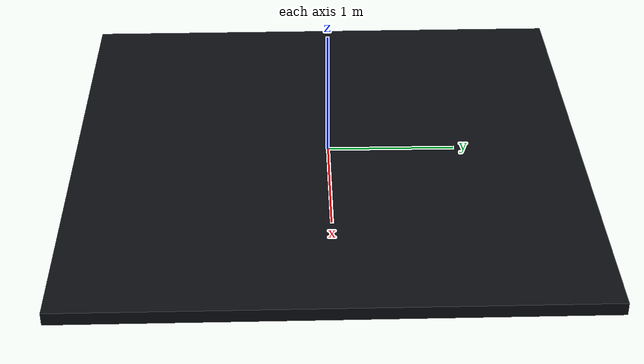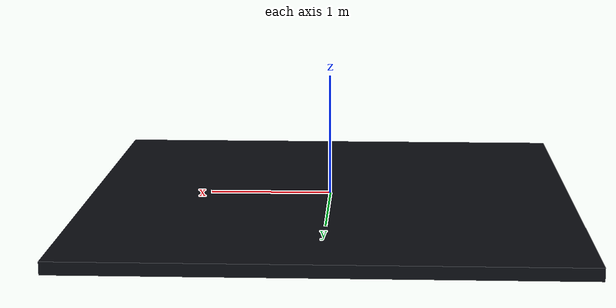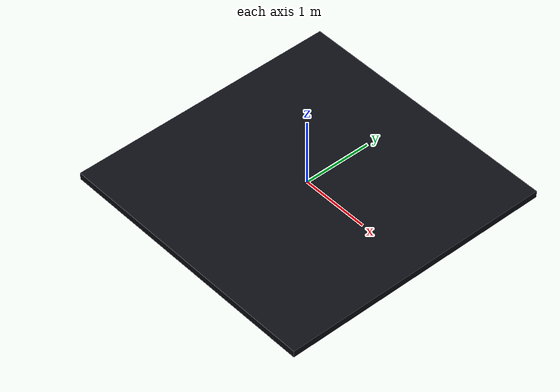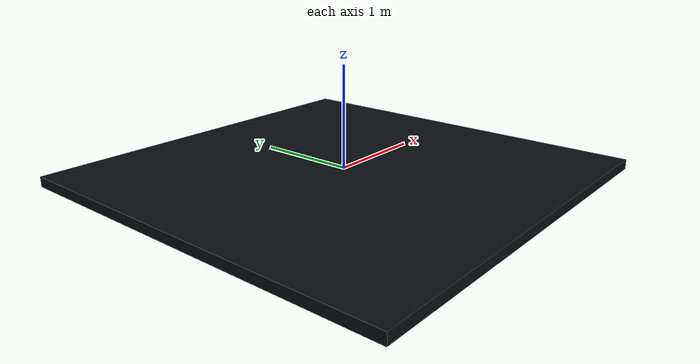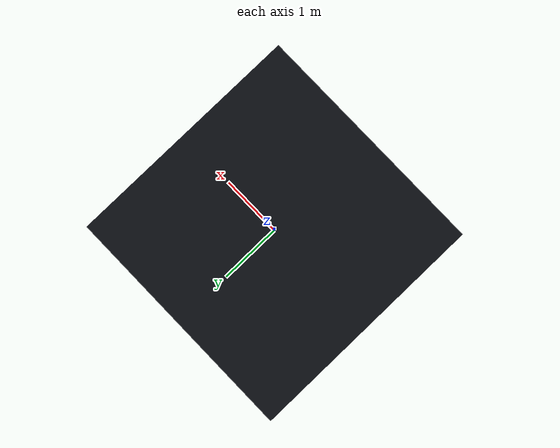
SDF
<?xml version="1.0"?>
<sdf version="1.9">
  <world name="arm_only">
    <physics name="default_physics" type="ode">
      <max_step_size>0.01</max_step_size>
      <real_time_factor>1.0</real_time_factor>
      <real_time_update_rate>100</real_time_update_rate>
    </physics>

    <plugin filename="gz-sim-physics-system" name="gz::sim::systems::Physics" />
    <plugin filename="gz-sim-user-commands-system" name="gz::sim::systems::UserCommands" />
    <plugin filename="gz-sim-scene-broadcaster-system" name="gz::sim::systems::SceneBroadcaster" />
    <plugin filename="gz-sim-sensors-system" name="gz::sim::systems::Sensors">
      <render_engine>ogre2</render_engine>
    </plugin>

    <scene>
      <ambient>0.45 0.45 0.45 1</ambient>
      <background>0.06 0.08 0.10 1</background>
      <sky />
    </scene>

    <light name="sun" type="directional">
      <pose>0 0 10 0 0 0</pose>
      <diffuse>0.9 0.9 0.9 1</diffuse>
      <specular>0.2 0.2 0.2 1</specular>
      <direction>-0.5 0.4 -0.8</direction>
      <cast_shadows>true</cast_shadows>
    </light>

    <model name="capture_floor">
      <static>true</static>
      <pose>0 0 -0.05 0 0 0</pose>
      <link name="floor_link">
        <visual name="floor_visual">
          <geometry>
            <box>
              <size>4 4 0.1</size>
            </box>
          </geometry>
          <material>
            <ambient>0.025 0.03 0.04 1</ambient>
            <diffuse>0.04 0.05 0.07 1</diffuse>
          </material>
        </visual>
      </link>
    </model>

    <model name="capture_camera">
      <static>true</static>
      <pose>1.2 -1.6 0.9 0 0.173 2.214</pose>
      <link name="camera_link">
        <sensor name="xarm_capture_camera" type="camera">
          <always_on>true</always_on>
          <update_rate>10</update_rate>
          <visualize>false</visualize>
          <topic>xarm_capture/image</topic>
          <camera>
            <horizontal_fov>1.0</horizontal_fov>
            <image>
              <width>640</width>
              <height>480</height>
              <format>R8G8B8</format>
            </image>
            <clip>
              <near>0.05</near>
              <far>10.0</far>
            </clip>
          </camera>
          <plugin
            filename="gz-sim-camera-video-recorder-system"
            name="gz::sim::systems::CameraVideoRecorder">
            <service>xarm_capture/record_video</service>
          </plugin>
        </sensor>
      </link>
    </model>
  </world>
</sdf>
